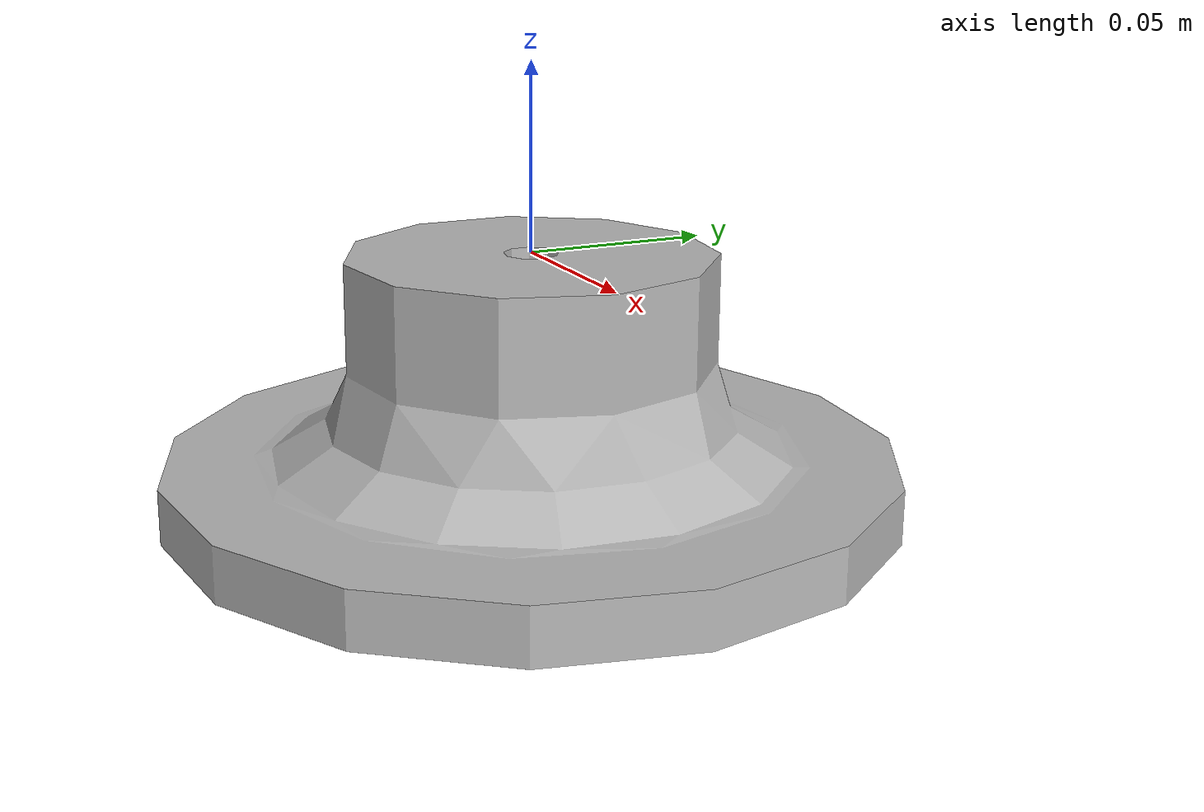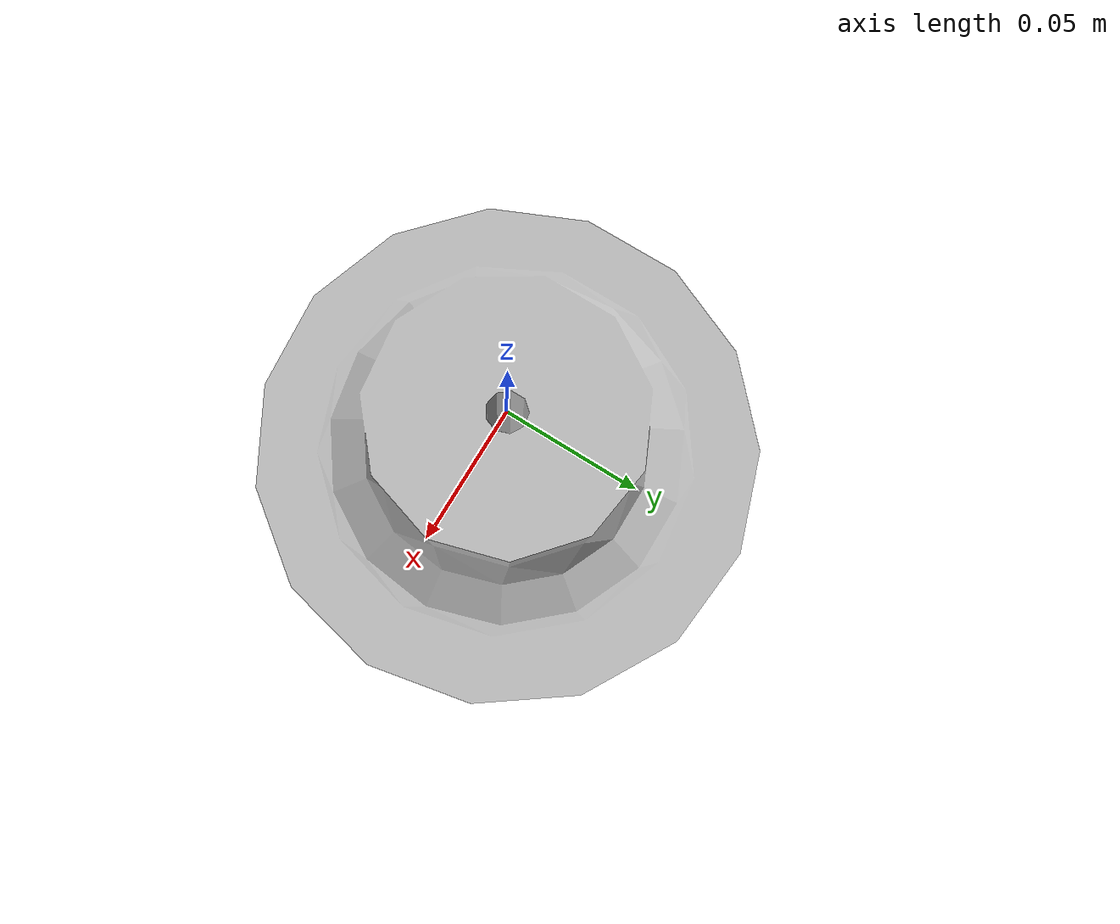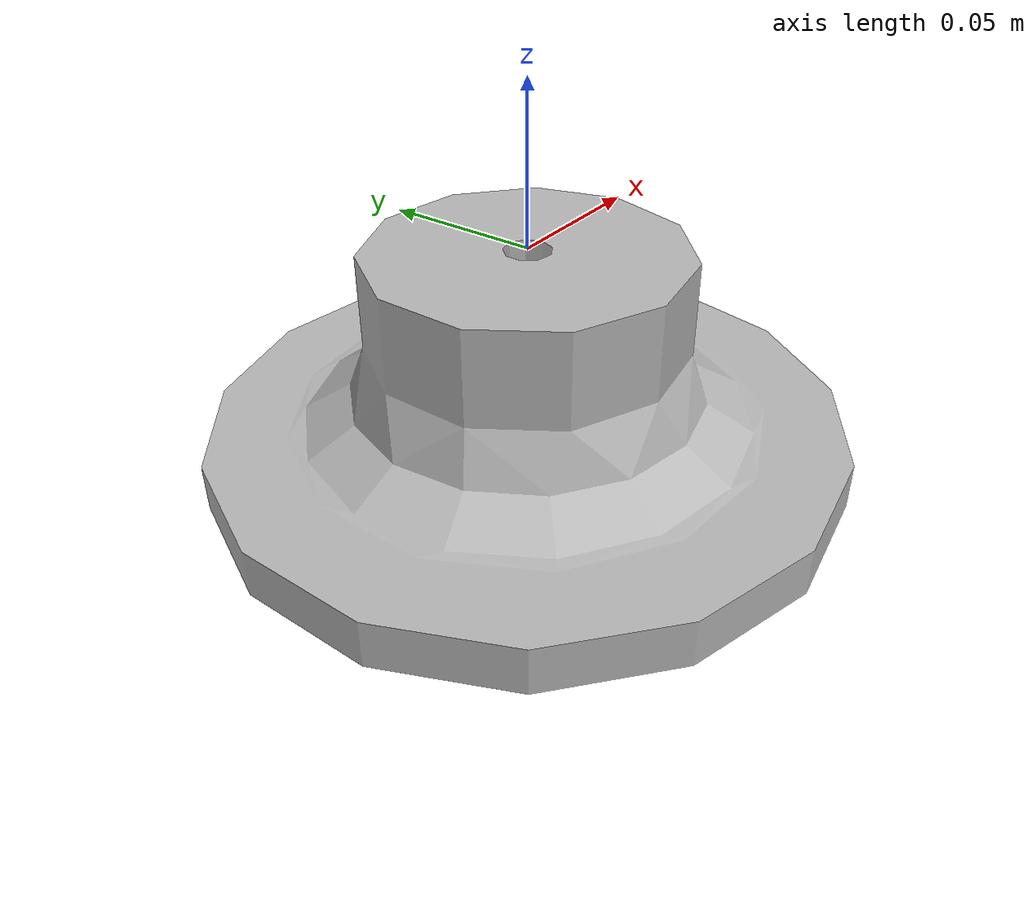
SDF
<?xml version="1.0" ?>
<sdf version="1.5">
  <model name="rail_wheel">
    <!-- Give the base link a unique name -->
    <gravity>true</gravity>
    <pose>0 0 0 0 0 0</pose>
    <link name="base">
      <inertial>
        <mass>0.8</mass>
          <inertia>
            <ixx>0.003</ixx>
            <iyy>0.003</iyy>
            <izz>0.003</izz>
            <ixy>0.002</ixy>
            <ixz>0.002</ixz>
            <iyz>0.002</iyz>
          </inertia>
      </inertial>

      <visual name="base_visual">
        <geometry>
          <mesh>
            <uri>model://agro/models/rail_wheel/meshes/rail_wheel.obj</uri>
          </mesh>
        </geometry>
      </visual>

      <collision name="base_collision">
        <geometry>
          <mesh>
            <uri>model://agro/models/rail_wheel/meshes/rail_wheel.obj</uri>
          </mesh>
        </geometry>
      </collision>
    </link>

  </model>
</sdf>
